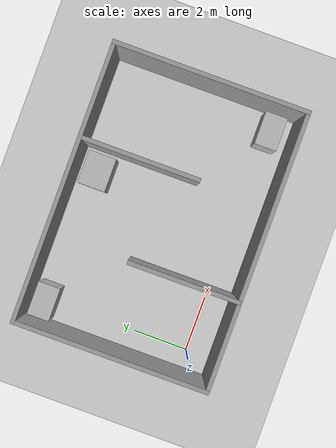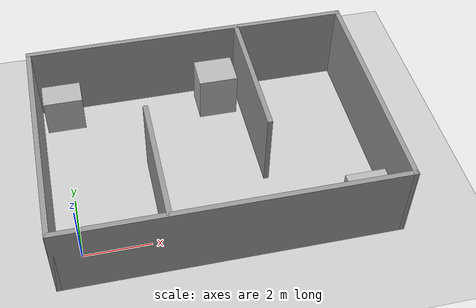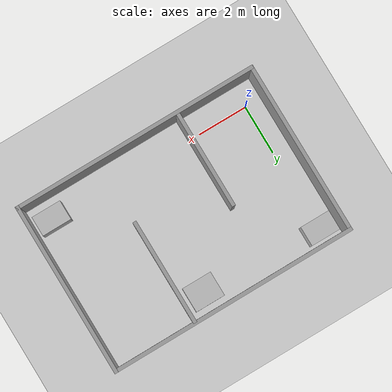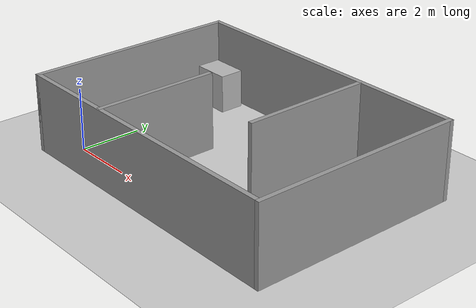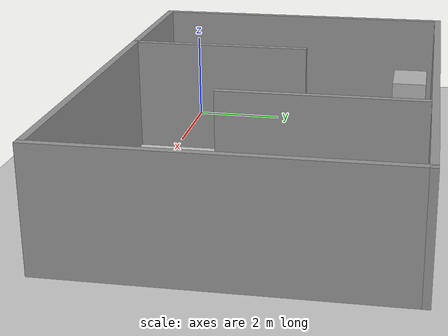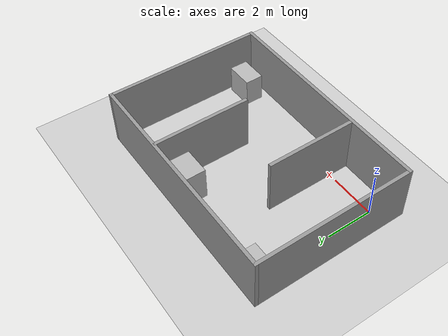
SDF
<sdf version="1.7">
 <world name="default">
  <light name="sun" type="directional">
   <pose>0 0 10 0 -0 0</pose>
   <diffuse>0.8 0.8 0.8 1</diffuse>
   <specular>0.2 0.2 0.2 1</specular>
   <attenuation>
    <range>1000</range>
    <constant>0.9</constant>
    <linear>0.01</linear>
    <quadratic>0.001</quadratic>
   </attenuation>
   <direction>-0.5 0.1 -0.9</direction>
   <spot><inner_angle>0</inner_angle><outer_angle>0</outer_angle><falloff>0</falloff></spot>
  </light>
  <model name="ground_plane">
   <static>1</static>
   <link name="link">
    <collision name="collision">
     <geometry><plane><normal>0 0 1</normal><size>100 100</size></plane></geometry>
     <surface><friction><ode><mu>100</mu><mu2>50</mu2></ode></friction></surface>
    </collision>
    <visual name="visual">
     <cast_shadows>0</cast_shadows>
     <geometry><plane><normal>0 0 1</normal><size>100 100</size></plane></geometry>
     <material>
      <script><uri>file://media/materials/scripts/gazebo.material</uri><name>Gazebo/Grey</name></script>
     </material>
    </visual>
   </link>
  </model>
  <gravity>0 0 -9.8</gravity>
  <magnetic_field>6e-06 2.3e-05 -4.2e-05</magnetic_field>
  <atmosphere type="adiabatic"/>
  <physics type="ode">
   <max_step_size>0.001</max_step_size>
   <real_time_factor>1</real_time_factor>
   <real_time_update_rate>1000</real_time_update_rate>
  </physics>
  <scene><ambient>0.4 0.4 0.4 1</ambient><background>0.7 0.7 0.7 1</background><shadows>1</shadows></scene>
  <spherical_coordinates>
   <surface_model>EARTH_WGS84</surface_model>
   <latitude_deg>0</latitude_deg>
   <longitude_deg>0</longitude_deg>
   <elevation>0</elevation>
   <heading_deg>0</heading_deg>
  </spherical_coordinates>
  <model name="room">
   <pose>4.1909 4.40885 0 0 -0 0</pose>
   <link name="Wall_10">
    <collision name="Wall_10_Collision">
     <geometry><box><size>7 0.15 2.5</size></box></geometry>
     <pose>0 0 1.25 0 -0 0</pose>
    </collision>
    <visual name="Wall_10_Visual">
     <pose>0 0 1.25 0 -0 0</pose>
     <geometry><box><size>7 0.15 2.5</size></box></geometry>
     <material>
      <script><uri>file://media/materials/scripts/gazebo.material</uri><name>Gazebo/Grey</name></script>
      <ambient>1 1 1 1</ambient>
     </material>
     <meta><layer>0</layer></meta>
    </visual>
    <pose>4.925 -1.9075 0 0 -0 1.5708</pose>
   </link>
   <link name="Wall_11">
    <collision name="Wall_11_Collision">
     <geometry><box><size>10 0.15 2.5</size></box></geometry>
     <pose>0 0 1.25 0 -0 0</pose>
    </collision>
    <visual name="Wall_11_Visual">
     <pose>0 0 1.25 0 -0 0</pose>
     <geometry><box><size>10 0.15 2.5</size></box></geometry>
     <material>
      <script><uri>file://media/materials/scripts/gazebo.material</uri><name>Gazebo/Grey</name></script>
      <ambient>1 1 1 1</ambient>
     </material>
     <meta><layer>0</layer></meta>
    </visual>
    <pose>-0 1.5175 0 0 -0 3.14159</pose>
   </link>
   <link name="Wall_13">
    <collision name="Wall_13_Collision">
     <geometry><box><size>4 0.15 2.5</size></box></geometry>
     <pose>0 0 1.25 0 -0 0</pose>
    </collision>
    <visual name="Wall_13_Visual">
     <pose>0 0 1.25 0 -0 0</pose>
     <geometry><box><size>4 0.15 2.5</size></box></geometry>
     <material>
      <script><uri>file://media/materials/scripts/gazebo.material</uri><name>Gazebo/Grey</name></script>
      <ambient>1 1 1 1</ambient>
     </material>
     <meta><layer>0</layer></meta>
    </visual>
    <pose>-1.775 -3.3675 0 0 -0 1.5708</pose>
   </link>
   <link name="Wall_15">
    <collision name="Wall_15_Collision">
     <geometry><box><size>4.25 0.15 2.5</size></box></geometry>
     <pose>0 0 1.25 0 -0 0</pose>
    </collision>
    <visual name="Wall_15_Visual">
     <pose>0 0 1.25 0 -0 0</pose>
     <geometry><box><size>4.25 0.15 2.5</size></box></geometry>
     <material>
      <script><uri>file://media/materials/scripts/gazebo.material</uri><name>Gazebo/Grey</name></script>
      <ambient>1 1 1 1</ambient>
     </material>
     <meta><layer>0</layer></meta>
    </visual>
    <pose>1.585 -0.6125 0 0 -0 -1.5708</pose>
   </link>
   <link name="Wall_8">
    <collision name="Wall_8_Collision">
     <geometry><box><size>7 0.15 2.5</size></box></geometry>
     <pose>0 0 1.25 0 -0 0</pose>
    </collision>
    <visual name="Wall_8_Visual">
     <pose>0 0 1.25 0 -0 0</pose>
     <geometry><box><size>7 0.15 2.5</size></box></geometry>
     <material>
      <script><uri>file://media/materials/scripts/gazebo.material</uri><name>Gazebo/Grey</name></script>
      <ambient>1 1 1 1</ambient>
     </material>
     <meta><layer>0</layer></meta>
    </visual>
    <pose>-4.925 -1.9075 0 0 -0 -1.5708</pose>
   </link>
   <link name="Wall_9">
    <collision name="Wall_9_Collision">
     <geometry><box><size>10 0.15 2.5</size></box></geometry>
     <pose>0 0 1.25 0 -0 0</pose>
    </collision>
    <visual name="Wall_9_Visual">
     <pose>0 0 1.25 0 -0 0</pose>
     <geometry><box><size>10 0.15 2.5</size></box></geometry>
     <material>
      <script><uri>file://media/materials/scripts/gazebo.material</uri><name>Gazebo/Grey</name></script>
      <ambient>1 1 1 1</ambient>
     </material>
     <meta><layer>0</layer></meta>
    </visual>
    <pose>-0 -5.3325 0 0 -0 0</pose>
   </link>
   <static>1</static>
  </model>
  <model name="Big box">
   <pose>4.93746 5.11209 0.749499 -0 0.000832 -2e-06</pose>
   <static>0</static>
   <link name="link">
    <inertial>
     <mass>40</mass>
     <inertia><ixx>1</ixx><ixy>0</ixy><ixz>0</ixz><iyy>1</iyy><iyz>0</iyz><izz>1</izz></inertia>
    </inertial>
    <collision name="collision">
     <geometry><box><size>1.2 0.8 1.5</size></box></geometry>
     <surface><contact><ode><max_vel>0.1</max_vel><min_depth>0.001</min_depth></ode></contact></surface>
    </collision>
    <visual name="visual"><geometry><mesh><uri>model://big_box/meshes/big_box.dae</uri></mesh></geometry></visual>
   </link>
  </model>
  <model name="big_box3">
   <pose>0.059771 5.32538 0.624497 0 0.000829 0</pose>
   <static>0</static>
   <link name="link">
    <inertial>
     <mass>40</mass>
     <inertia><ixx>1</ixx><ixy>0</ixy><ixz>0</ixz><iyy>1</iyy><iyz>0</iyz><izz>1</izz></inertia>
    </inertial>
    <collision name="collision">
     <geometry><box><size>1.2 0.8 1.25</size></box></geometry>
     <surface><contact><ode><max_vel>0.1</max_vel><min_depth>0.001</min_depth></ode></contact></surface>
    </collision>
    <visual name="visual">
     <geometry><mesh><uri>model://big_box3/meshes/big_box.dae</uri></mesh></geometry>
    </visual>
   </link>
  </model>
  <model name="Big box 4">
   <pose>8.30254 -0.079101 0.624496 -0 0.000827 -2e-06</pose>
   <static>0</static>
   <link name="link">
    <inertial>
     <mass>40</mass>
     <inertia><ixx>1</ixx><ixy>0</ixy><ixz>0</ixz><iyy>1</iyy><iyz>0</iyz><izz>1</izz></inertia>
    </inertial>
    <collision name="collision">
     <geometry><box><size>1.2 0.8 1.25</size></box></geometry>
     <surface><contact><ode><max_vel>0.1</max_vel><min_depth>0.001</min_depth></ode></contact></surface>
    </collision>
    <visual name="visual">
     <geometry><mesh><uri>model://big_box4/meshes/big_box.dae</uri></mesh></geometry>
    </visual>
   </link>
  </model>
 </world>
</sdf>
